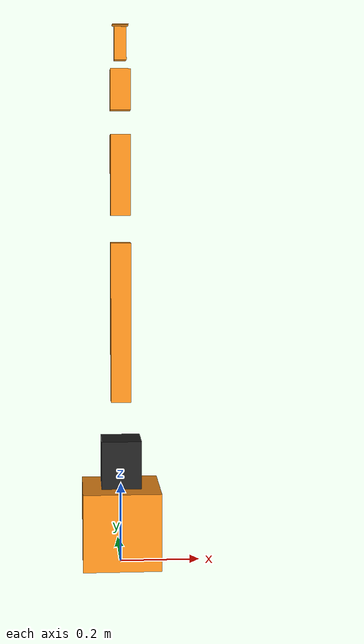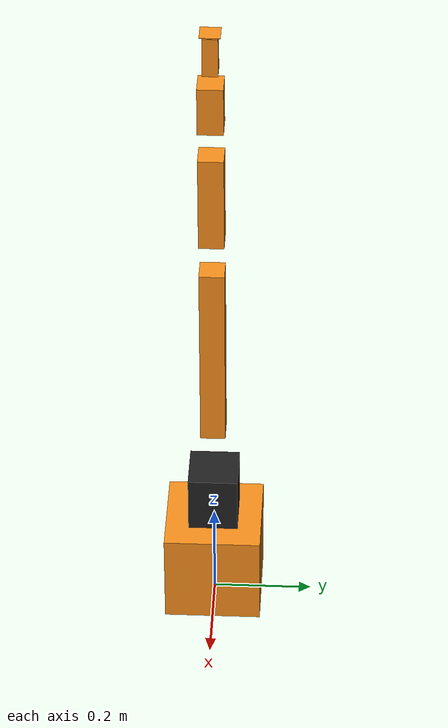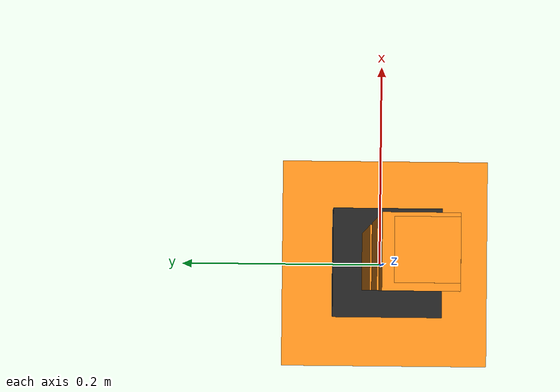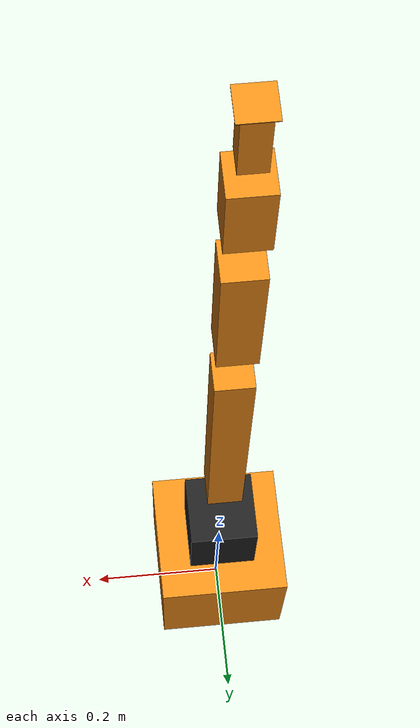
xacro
<?xml version="1.0" ?>
<!-- Denso 6DOF Manipulator-->
<robot name="denso" xmlns:xacro="http://www.ros.org/wiki/xacro">

     <!-- Import all Gazebo-customization elements, including Gazebo colors -->
 <xacro:include filename="$(find denso_arm)/model/denso.gazebo" />
         <!-- Import Rviz colors -->
 <xacro:include filename="$(find denso_arm)/model/materials.xacro" />

<link name = "world"/>

<joint name="fixed" type="fixed">
    <parent link="world"/>
    <child link="link1"/>
</joint>

<link name="link1">
    <visual>
      <origin xyz="0 0 0.098" rpy="0 0 0" />
      <geometry >
      <box size="0.195 0.195 0.195" />
      </geometry>
      <material name="orange" />
    </visual>
     <inertial>
        <mass value="9"/>
        <inertia ixx="9.0" ixy="0.0" ixz="0.0"
                 iyy="9.0" iyz="0.0"
                 izz="9.0"/>
      </inertial>
  </link>

  <link name="link2">
    <visual>
            <origin xyz="0 0 0.06" rpy="0 0 0" />
      <geometry >
       <box size="0.100 0.100 0.120" />
      </geometry>
      <material name="black" />
     </visual>
     <inertial>
        <mass value="8"/>
        <inertia ixx="8.0" ixy="0.0" ixz="0.0" iyy="8.0" iyz="0.0" izz="8.0"/>
      </inertial>
  </link>

  <joint name="joint1" type="revolute">
    <parent link="link1"/>
    <child link="link2"/>
       <origin xyz="0 0 0.198" rpy="0 0 1.57" />
    <axis xyz="0 0 1" />
    <limit lower="-2.967" upper="2.967" effort="10"
           velocity="1.0" />
    <joint_properties damping="0.0" friction="0.0"/>
  </joint>

  <link name="link3">
    <visual>
       <origin xyz="0 0 0.225" rpy="0 0 0" />
      <geometry >
      <box size="0.05 0.05 0.400" />
      </geometry>
      <material name="orange" />
    </visual>
        <inertial>
        <mass value="7"/>
        <inertia ixx="7.0" ixy="0.0" ixz="0.0" iyy="7.0" iyz="0.0" izz="7.0"/>
      </inertial>
  </link>

  <joint name="joint2" type="revolute">
    <parent link="link2"/>
    <child link="link3"/>
      <origin xyz="0 0 0.190" rpy="0 0 0" />
    <axis xyz="1 0 0" />
    <limit lower="-1.745" upper="2.356" effort="10"
           velocity="1.0" />
    <joint_properties damping="0.0" friction="0.0"/>
  </joint>

  <link name="link4">
    <visual>
            <origin xyz="0 0 0.1425" rpy="0 0 0" />
      <geometry >
      <box size="0.05 0.05 0.20" />
      </geometry>
      <material name="orange" />
    </visual>
        <inertial>
        <mass value="7"/>
        <inertia ixx="7.0" ixy="0.0" ixz="0.0" iyy="7.0" iyz="0.0" izz="7.0"/>
      </inertial>
  </link>

  <joint name="joint3" type="revolute">
    <parent link="link3"/>
    <child link="link4"/>
     <origin xyz="0 0 0.450" rpy="0 0 0" />
    <axis xyz="1 0 0" />
     <limit lower="-2.094" upper="2.670" effort="10"
                velocity="1.0" />
    <joint_properties damping="0.0" friction="0.0"/>
  </joint>

  <link name="link5">
    <visual>
      <origin xyz="0 0 0.0675" rpy="0 0 0" />
      <geometry >
       <box size="0.05 0.05 0.10" />
      </geometry>
      <material name="orange" />
    </visual>
        <inertial>
        <mass value="7"/>
        <inertia ixx="7.0" ixy="0.0" ixz="0.0" iyy="7.0" iyz="0.0" izz="7.0"/>
      </inertial>
  </link>

  <joint name="joint4" type="revolute">
    <parent link="link4"/>
    <child link="link5"/>
    <origin xyz="0 0 0.285" rpy="0 0 0" />
    <axis xyz="1 0 0" />
    <limit lower="-4.712" upper="4.712" effort="10"
               velocity="1.0" />
    <joint_properties damping="0.0" friction="0.0"/>
  </joint>

  <link name="link6">
    <visual>
       <origin xyz="0 0 0.045" rpy="0 0 0" />
      <geometry >
      <box size="0.03 0.03 0.08" />
      </geometry>
      <material name="orange" />
    </visual>
        <inertial>
        <mass value="7"/>
        <inertia ixx="7.0" ixy="0.0" ixz="0.0" iyy="7.0" iyz="0.0" izz="7.0"/>
      </inertial>
  </link>

  <joint name="joint5" type="revolute">
    <parent link="link5"/>
    <child link="link6"/>
    <origin xyz="0 0 0.135" rpy="0 0 0" />
        <axis xyz="1 0 0" />
    <limit lower="-2.094" upper="2.094" effort="10"
               velocity="1.0" />
    <joint_properties damping="0.0" friction="0.0"/>
  </joint>

  <link name="link7">
    <visual>
      <origin xyz="0 0 0.0005" rpy="0 0 0" />
      <geometry >
        <box size="0.04 0.04 0.001" />
      </geometry>
      <material name="orange" />
    </visual>
        <inertial>
        <mass value="7"/>
        <inertia ixx="7.0" ixy="0.0" ixz="0.0" iyy="7.0" iyz="0.0" izz="7.0"/>
      </inertial>
  </link>

  <joint name="joint6" type="revolute">
    <parent link="link6"/>
    <child link="link7"/>
     <origin xyz="0 0 0.090" rpy="0 0 0" />
         <axis xyz="0 0 1" />
             <limit lower="-6.283" upper="6.283" effort="10"
                        velocity="1.0" />
    <joint_properties damping="0.0" friction="0.0"/>
  </joint>

<transmission name="tran1">
    <type>transmission_interface/SimpleTransmission</type>
    <joint name="joint1"/>
    <actuator name="motor1">
       <hardwareInterface>EffortJointInterface</hardwareInterface>
       <mechanicalReduction>1</mechanicalReduction>
     </actuator>
 </transmission>

   <transmission name="tran2">
       <type>transmission_interface/SimpleTransmission</type>
       <joint name="joint2"/>
       <actuator name="motor2">
         <hardwareInterface>EffortJointInterface</hardwareInterface>
         <mechanicalReduction>1</mechanicalReduction>
      </actuator>
   </transmission>

</robot>
